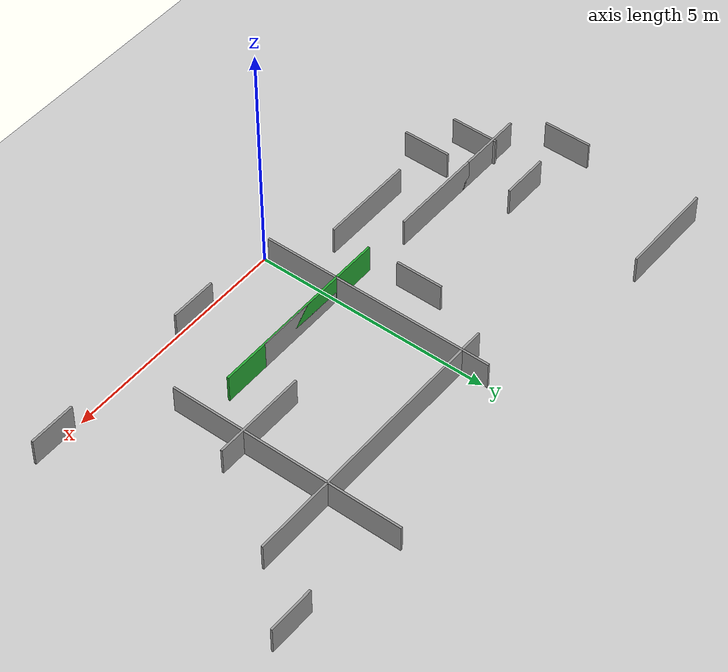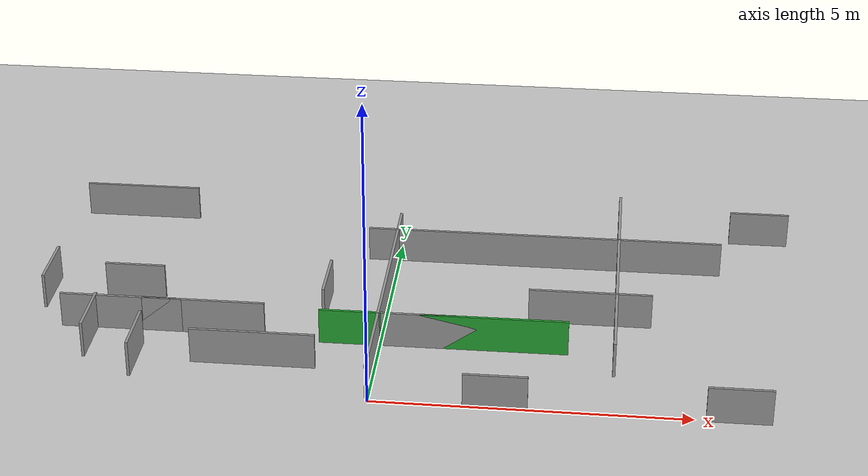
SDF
<sdf version="1.7">
 <world name="default">
  <model name="ground_plane">
   <static>1</static>
   <link name="link">
    <collision name="collision">
     <geometry><plane><normal>0 0 1</normal><size>100 100</size></plane></geometry>
     <surface><friction><ode><mu>100</mu><mu2>50</mu2></ode></friction></surface>
    </collision>
    <visual name="visual">
     <cast_shadows>0</cast_shadows>
     <geometry><plane><normal>0 0 1</normal><size>100 100</size></plane></geometry>
     <material>
      <script><uri>file://media/materials/scripts/gazebo.material</uri><name>Gazebo/Grey</name></script>
     </material>
    </visual>
   </link>
  </model>
  <light name="sun" type="directional">
   <pose>0 0 10 0 -0 0</pose>
   <diffuse>0.8 0.8 0.8 1</diffuse>
   <specular>0.2 0.2 0.2 1</specular>
   <attenuation>
    <range>1000</range>
    <constant>0.9</constant>
    <linear>0.01</linear>
    <quadratic>0.001</quadratic>
   </attenuation>
   <direction>-0.5 0.1 -0.9</direction>
   <spot><inner_angle>0</inner_angle><outer_angle>0</outer_angle><falloff>0</falloff></spot>
  </light>
  <scene><shadows>0</shadows><ambient>0.4 0.4 0.4 1</ambient><background>0.7 0.7 0.7 1</background></scene>
  <physics type="ode">
   <real_time_update_rate>1000</real_time_update_rate>
   <max_step_size>0.001</max_step_size>
   <real_time_factor>1</real_time_factor>
   <ode>
    <solver>
     <type>quick</type>
     <iters>150</iters>
     <precon_iters>0</precon_iters>
     <sor>1.4</sor>
     <use_dynamic_moi_rescaling>1</use_dynamic_moi_rescaling>
    </solver>
    <constraints>
     <cfm>1e-05</cfm>
     <erp>0.2</erp>
     <contact_max_correcting_vel>2000</contact_max_correcting_vel>
     <contact_surface_layer>0.01</contact_surface_layer>
    </constraints>
   </ode>
  </physics>
  <gravity>0 0 -9.8</gravity>
  <magnetic_field>6e-06 2.3e-05 -4.2e-05</magnetic_field>
  <atmosphere type="adiabatic"/>
  <spherical_coordinates>
   <surface_model>EARTH_WGS84</surface_model>
   <latitude_deg>0</latitude_deg>
   <longitude_deg>0</longitude_deg>
   <elevation>0</elevation>
   <heading_deg>0</heading_deg>
  </spherical_coordinates>
  <model name="maze_built">
   <pose>0.462633 2.81339 0 0 -0 0</pose>
   <link name="Wall_Stage_1">
    <collision name="Wall_Stage_1_Collision">
     <geometry><box><size>4 0.045 0.6</size></box></geometry>
     <pose>0 0 0.300 0 -0 0</pose>
    </collision>
    <visual name="Wall_Stage_1_Visual">
     <pose>0 0 0.300 0 -0 0</pose>
     <geometry><box><size>4 0.045 0.6</size></box></geometry>
     <material>
      <script><uri>file://media/materials/scripts/gazebo.material</uri><name>Gazebo/Green</name></script>
      <ambient>1 1 1 1</ambient>
     </material>
     <meta><layer>0</layer></meta>
    </visual>
    <pose>0.550122 -1.12784 0 0 -0 -3.13873</pose>
   </link>
   <link name="Wall_0">
    <collision name="Wall_0_Collision">
     <geometry><box><size>2 0.045 0.6</size></box></geometry>
     <pose>0 0 0.300 0 -0 0</pose>
    </collision>
    <visual name="Wall_0_Visual">
     <pose>0 0 0.300 0 -0 0</pose>
     <geometry><box><size>2 0.045 0.6</size></box></geometry>
     <material>
      <script><uri>file://media/materials/scripts/gazebo.material</uri><name>Gazebo/Grey</name></script>
      <ambient>1 1 1 1</ambient>
     </material>
     <meta><layer>0</layer></meta>
    </visual>
    <pose>0.550122 -1.12784 0 0 -0 -3.13873</pose>
   </link>
   <link name="Wall_1">
    <collision name="Wall_1_Collision">
     <geometry><box><size>5 0.045 0.6</size></box></geometry>
     <pose>0 0 0.300 0 -0 0</pose>
    </collision>
    <visual name="Wall_1_Visual">
     <pose>0 0 0.300 0 -0 0</pose>
     <geometry><box><size>5 0.045 0.6</size></box></geometry>
     <material>
      <script><uri>file://media/materials/scripts/gazebo.material</uri><name>Gazebo/Grey</name></script>
      <ambient>1 1 1 1</ambient>
     </material>
     <meta><layer>0</layer></meta>
    </visual>
    <pose>-0.493757 -0.215773 0 0 -0 1.5708</pose>
   </link>
   <link name="Wall_2">
    <collision name="Wall_2_Collision">
     <geometry><box><size>6 0.045 0.6</size></box></geometry>
     <pose>0 0 0.300 0 -0 0</pose>
    </collision>
    <visual name="Wall_2_Visual">
     <pose>0 0 0.300 0 -0 0</pose>
     <geometry><box><size>6 0.045 0.6</size></box></geometry>
     <material>
      <script><uri>file://media/materials/scripts/gazebo.material</uri><name>Gazebo/Grey</name></script>
      <ambient>1 1 1 1</ambient>
     </material>
     <meta><layer>0</layer></meta>
    </visual>
    <pose>2.01246 1.69872 0 0 -0 0</pose>
   </link>
   <link name="Wall_3">
    <collision name="Wall_3_Collision">
     <geometry><box><size>5 0.045 0.6</size></box></geometry>
     <pose>0 0 0.300 0 -0 0</pose>
    </collision>
    <visual name="Wall_3_Visual">
     <pose>0 0 0.300 0 -0 0</pose>
     <geometry><box><size>5 0.045 0.6</size></box></geometry>
     <material>
      <script><uri>file://media/materials/scripts/gazebo.material</uri><name>Gazebo/Grey</name></script>
      <ambient>1 1 1 1</ambient>
     </material>
     <meta><layer>0</layer></meta>
    </visual>
    <pose>3.28746 0.773721 0 0 -0 -1.5708</pose>
   </link>
   <link name="Wall_4">
    <collision name="Wall_4_Collision">
     <geometry><box><size>2 0.045 0.6</size></box></geometry>
     <pose>0 0 0.300 0 -0 0</pose>
    </collision>
    <visual name="Wall_4_Visual">
     <pose>0 0 0.300 0 -0 0</pose>
     <geometry><box><size>2 0.045 0.6</size></box></geometry>
     <material>
      <script><uri>file://media/materials/scripts/gazebo.material</uri><name>Gazebo/Grey</name></script>
      <ambient>1 1 1 1</ambient>
     </material>
     <meta><layer>0</layer></meta>
    </visual>
    <pose>2.86246 -0.151279 0 0 -0 3.14159</pose>
   </link>
   <link name="Wall_10">
    <collision name="Wall_10_Collision">
     <geometry><box><size>1 0.045 0.6</size></box></geometry>
     <pose>0 0 0.300 0 -0 0</pose>
    </collision>
    <visual name="Wall_10_Visual">
     <pose>0 0 0.300 0 -0 0</pose>
     <geometry><box><size>1 0.045 0.6</size></box></geometry>
     <material>
      <script><uri>file://media/materials/scripts/gazebo.material</uri><name>Gazebo/Grey</name></script>
      <ambient>1 1 1 1</ambient>
     </material>
     <meta><layer>0</layer></meta>
    </visual>
    <pose>-4.275 -1.9544 0 0 -0 1.5708</pose>
   </link>
   <link name="Wall_12">
    <collision name="Wall_12_Collision">
     <geometry><box><size>2 0.045 0.6</size></box></geometry>
     <pose>0 0 0.300 0 -0 0</pose>
    </collision>
    <visual name="Wall_12_Visual">
     <pose>0 0 0.300 0 -0 0</pose>
     <geometry><box><size>2 0.045 0.6</size></box></geometry>
     <material>
      <script><uri>file://media/materials/scripts/gazebo.material</uri><name>Gazebo/Grey</name></script>
      <ambient>1 1 1 1</ambient>
     </material>
     <meta><layer>0</layer></meta>
    </visual>
    <pose>-4.7 -1.0294 0 0 -0 3.14159</pose>
   </link>
   <link name="Wall_13">
    <collision name="Wall_13_Collision">
     <geometry><box><size>2 0.045 0.6</size></box></geometry>
     <pose>0 0 0.300 0 -0 0</pose>
    </collision>
    <visual name="Wall_13_Visual">
     <pose>0 0 0.300 0 -0 0</pose>
     <geometry><box><size>2 0.045 0.6</size></box></geometry>
     <material>
      <script><uri>file://media/materials/scripts/gazebo.material</uri><name>Gazebo/Grey</name></script>
      <ambient>1 1 1 1</ambient>
     </material>
     <meta><layer>0</layer></meta>
    </visual>
    <pose>-3.35 -1.0294 0 0 -0 0</pose>
   </link>
   <link name="Wall_11">
    <collision name="Wall_11_Collision">
     <geometry><box><size>1 0.045 0.6</size></box></geometry>
     <pose>0 0 0.300 0 -0 0</pose>
    </collision>
    <visual name="Wall_11_Visual">
     <pose>0 0 0.300 0 -0 0</pose>
     <geometry><box><size>1 0.045 0.6</size></box></geometry>
     <material>
      <script><uri>file://media/materials/scripts/gazebo.material</uri><name>Gazebo/Grey</name></script>
      <ambient>1 1 1 1</ambient>
     </material>
     <meta><layer>0</layer></meta>
    </visual>
    <pose>-6.125 -0.000145 0 0 -0 1.5708</pose>
   </link>
   <link name="Wall_14">
    <collision name="Wall_14_Collision">
     <geometry><box><size>1 0.045 0.6</size></box></geometry>
     <pose>0 0 0.300 0 -0 0</pose>
    </collision>
    <visual name="Wall_14_Visual">
     <pose>0 0 0.300 0 -0 0</pose>
     <geometry><box><size>1 0.045 0.6</size></box></geometry>
     <material>
      <script><uri>file://media/materials/scripts/gazebo.material</uri><name>Gazebo/Grey</name></script>
      <ambient>1 1 1 1</ambient>
     </material>
     <meta><layer>0</layer></meta>
    </visual>
    <pose>-5.125 -1.4544 0 0 -0 -1.5708</pose>
   </link>
   <link name="Wall_15">
    <collision name="Wall_15_Collision">
     <geometry><box><size>2 0.045 0.6</size></box></geometry>
     <pose>0 0 0.300 0 -0 0</pose>
    </collision>
    <visual name="Wall_15_Visual">
     <pose>0 0 0.300 0 -0 0</pose>
     <geometry><box><size>2 0.045 0.6</size></box></geometry>
     <material>
      <script><uri>file://media/materials/scripts/gazebo.material</uri><name>Gazebo/Grey</name></script>
      <ambient>1 1 1 1</ambient>
     </material>
     <meta><layer>0</layer></meta>
    </visual>
    <pose>-2.39752 -1.92236 0 0 -0 0</pose>
   </link>
   <link name="Wall_16">
    <collision name="Wall_16_Collision">
     <geometry><box><size>1 0.045 0.6</size></box></geometry>
     <pose>0 0 0.300 0 -0 0</pose>
    </collision>
    <visual name="Wall_16_Visual">
     <pose>0 0 0.300 0 -0 0</pose>
     <geometry><box><size>1 0.045 0.6</size></box></geometry>
     <material>
      <script><uri>file://media/materials/scripts/gazebo.material</uri><name>Gazebo/Grey</name></script>
      <ambient>1 1 1 1</ambient>
     </material>
     <meta><layer>0</layer></meta>
    </visual>
    <pose>-1.47253 0.002642 0 0 -0 1.5708</pose>
   </link>
   <link name="Wall_17">
    <collision name="Wall_17_Collision">
     <geometry><box><size>1 0.045 0.6</size></box></geometry>
     <pose>0 0 0.300 0 -0 0</pose>
    </collision>
    <visual name="Wall_17_Visual">
     <pose>0 0 0.300 0 -0 0</pose>
     <geometry><box><size>1 0.045 0.6</size></box></geometry>
     <material>
      <script><uri>file://media/materials/scripts/gazebo.material</uri><name>Gazebo/Grey</name></script>
      <ambient>1 1 1 1</ambient>
     </material>
     <meta><layer>0</layer></meta>
    </visual>
    <pose>-1.47253 0.002642 0 0 -0 1.5708</pose>
   </link>
   <link name="Wall_18">
    <collision name="Wall_18_Collision">
     <geometry><box><size>1 0.045 0.6</size></box></geometry>
     <pose>0 0 0.300 0 -0 0</pose>
    </collision>
    <visual name="Wall_18_Visual">
     <pose>0 0 0.300 0 -0 0</pose>
     <geometry><box><size>1 0.045 0.6</size></box></geometry>
     <material>
      <script><uri>file://media/materials/scripts/gazebo.material</uri><name>Gazebo/Grey</name></script>
      <ambient>1 1 1 1</ambient>
     </material>
     <meta><layer>0</layer></meta>
    </visual>
    <pose>-1.47253 0.002642 0 0 -0 1.5708</pose>
   </link>
   <link name="Wall_5">
    <collision name="Wall_5_Collision">
     <geometry><box><size>2 0.045 0.6</size></box></geometry>
     <pose>0 0 0.300 0 -0 0</pose>
    </collision>
    <visual name="Wall_5_Visual">
     <pose>0 0 0.300 0 -0 0</pose>
     <geometry><box><size>2 0.045 0.6</size></box></geometry>
     <material>
      <script><uri>file://media/materials/scripts/gazebo.material</uri><name>Gazebo/Grey</name></script>
      <ambient>1 1 1 1</ambient>
     </material>
     <meta><layer>0</layer></meta>
    </visual>
    <pose>-5.2 2.87911 0 0 -0 0</pose>
   </link>
   <link name="Wall_6">
    <collision name="Wall_6_Collision">
     <geometry><box><size>1 0.045 0.6</size></box></geometry>
     <pose>0 0 0.300 0 -0 0</pose>
    </collision>
    <visual name="Wall_6_Visual">
     <pose>0 0 0.300 0 -0 0</pose>
     <geometry><box><size>1 0.045 0.6</size></box></geometry>
     <material>
      <script><uri>file://media/materials/scripts/gazebo.material</uri><name>Gazebo/Grey</name></script>
      <ambient>1 1 1 1</ambient>
     </material>
     <meta><layer>0</layer></meta>
    </visual>
    <pose>-4.7 0.029114 0 0 -0 3.14159</pose>
   </link>
   <link name="Wall_7">
    <collision name="Wall_7_Collision">
     <geometry><box><size>1 0.045 0.6</size></box></geometry>
     <pose>0 0 0.300 0 -0 0</pose>
    </collision>
    <visual name="Wall_7_Visual">
     <pose>0 0 0.300 0 -0 0</pose>
     <geometry><box><size>1 0.045 0.6</size></box></geometry>
     <material>
      <script><uri>file://media/materials/scripts/gazebo.material</uri><name>Gazebo/Grey</name></script>
      <ambient>1 1 1 1</ambient>
     </material>
     <meta><layer>0</layer></meta>
    </visual>
    <pose>5.7 2.87911 0 0 -0 0</pose>
   </link>
   <link name="Wall_8">
    <collision name="Wall_8_Collision">
     <geometry><box><size>1 0.045 0.6</size></box></geometry>
     <pose>0 0 0.300 0 -0 0</pose>
    </collision>
    <visual name="Wall_8_Visual">
     <pose>0 0 0.300 0 -0 0</pose>
     <geometry><box><size>1 0.045 0.6</size></box></geometry>
     <material>
      <script><uri>file://media/materials/scripts/gazebo.material</uri><name>Gazebo/Grey</name></script>
      <ambient>1 1 1 1</ambient>
     </material>
     <meta><layer>0</layer></meta>
    </visual>
    <pose>5.2 -2.82089 0 0 -0 3.14159</pose>
   </link>
   <link name="Wall_9">
    <collision name="Wall_9_Collision">
     <geometry><box><size>1 0.045 0.6</size></box></geometry>
     <pose>0 0 0.300 0 -0 0</pose>
    </collision>
    <visual name="Wall_9_Visual">
     <pose>0 0 0.300 0 -0 0</pose>
     <geometry><box><size>1 0.045 0.6</size></box></geometry>
     <material>
      <script><uri>file://media/materials/scripts/gazebo.material</uri><name>Gazebo/Grey</name></script>
      <ambient>1 1 1 1</ambient>
     </material>
     <meta><layer>0</layer></meta>
    </visual>
    <pose>1.5 -2.82089 0 0 -0 3.14159</pose>
   </link>
   <static>1</static>
  </model>
  <model name="actor1_model">
   <pose>0.086227 0.925528 1.2138 1.5707 -0 2.32525</pose>
   <scale>1 1 1</scale>
   <link name="Head">
    <pose>0.098805 0.975295 1.67819 1.81231 -0.025997 2.3557</pose>
    <velocity>0 0 0 0 -0 0</velocity>
    <acceleration>0 0 0 0 -0 0</acceleration>
    <wrench>0 0 0 0 -0 0</wrench>
   </link>
   <link name="Hips">
    <pose>0.086227 0.925528 1.2138 1.5707 -0 2.32525</pose>
    <velocity>0 0 0 0 -0 0</velocity>
    <acceleration>0 0 0 0 -0 0</acceleration>
    <wrench>0 0 0 0 -0 0</wrench>
   </link>
   <link name="LHipJoint">
    <pose>0.086227 0.925528 1.2138 -1.96439 0.688543 -1.83155</pose>
    <velocity>0 0 0 0 -0 0</velocity>
    <acceleration>0 0 0 0 -0 0</acceleration>
    <wrench>0 0 0 0 -0 0</wrench>
   </link>
   <link name="LThumb">
    <pose>-0.094792 1.0532 0.996851 -1.58102 -0.130374 -1.88531</pose>
    <velocity>0 0 0 0 -0 0</velocity>
    <acceleration>0 0 0 0 -0 0</acceleration>
    <wrench>0 0 0 0 -0 0</wrench>
   </link>
   <link name="LeftArm">
    <pose>-0.056159 1.07678 1.53517 -1.80812 -0.081261 -0.93891</pose>
    <velocity>0 0 0 0 -0 0</velocity>
    <acceleration>0 0 0 0 -0 0</acceleration>
    <wrench>0 0 0 0 -0 0</wrench>
   </link>
   <link name="LeftFingerBase">
    <pose>-0.094792 1.0532 0.996851 -1.96196 0.353476 -1.20456</pose>
    <velocity>0 0 0 0 -0 0</velocity>
    <acceleration>0 0 0 0 -0 0</acceleration>
    <wrench>0 0 0 0 -0 0</wrench>
   </link>
   <link name="LeftFoot">
    <pose>0.154647 1.00061 0.250267 -2.81708 0.095676 2.25062</pose>
    <velocity>0 0 0 0 -0 0</velocity>
    <acceleration>0 0 0 0 -0 0</acceleration>
    <wrench>0 0 0 0 -0 0</wrench>
   </link>
   <link name="LeftForeArm">
    <pose>-0.10188 1.01207 1.22566 -1.44284 0.12754 -0.950322</pose>
    <velocity>0 0 0 0 -0 0</velocity>
    <acceleration>0 0 0 0 -0 0</acceleration>
    <wrench>0 0 0 0 -0 0</wrench>
   </link>
   <link name="LeftHand">
    <pose>-0.094792 1.0532 0.996851 -1.46608 0.147187 -1.11963</pose>
    <velocity>0 0 0 0 -0 0</velocity>
    <acceleration>0 0 0 0 -0 0</acceleration>
    <wrench>0 0 0 0 -0 0</wrench>
   </link>
   <link name="LeftHandIndex1">
    <pose>-0.110231 1.05852 0.968396 -1.94774 0.238156 -1.15588</pose>
    <velocity>0 0 0 0 -0 0</velocity>
    <acceleration>0 0 0 0 -0 0</acceleration>
    <wrench>0 0 0 0 -0 0</wrench>
   </link>
   <link name="LeftLeg">
    <pose>0.171759 1.08246 0.688329 -1.72681 -0.106423 -0.800077</pose>
    <velocity>0 0 0 0 -0 0</velocity>
    <acceleration>0 0 0 0 -0 0</acceleration>
    <wrench>0 0 0 0 -0 0</wrench>
   </link>
   <link name="LeftShoulder">
    <pose>0.119556 0.970922 1.47382 1.19368 1.25751 2.20487</pose>
    <velocity>0 0 0 0 -0 0</velocity>
    <acceleration>0 0 0 0 -0 0</acceleration>
    <wrench>0 0 0 0 -0 0</wrench>
   </link>
   <link name="LeftToeBase">
    <pose>0.258311 1.07905 0.20676 -3.02206 0.100308 2.25597</pose>
    <velocity>0 0 0 0 -0 0</velocity>
    <acceleration>0 0 0 0 -0 0</acceleration>
    <wrench>0 0 0 0 -0 0</wrench>
   </link>
   <link name="LeftUpLeg">
    <pose>0.052558 1.02778 1.10429 -1.28348 -0.105053 -0.79967</pose>
    <velocity>0 0 0 0 -0 0</velocity>
    <acceleration>0 0 0 0 -0 0</acceleration>
    <wrench>0 0 0 0 -0 0</wrench>
   </link>
   <link name="LowerBack">
    <pose>0.086227 0.925528 1.2138 1.87655 0.028231 2.36657</pose>
    <velocity>0 0 0 0 -0 0</velocity>
    <acceleration>0 0 0 0 -0 0</acceleration>
    <wrench>0 0 0 0 -0 0</wrench>
   </link>
   <link name="Neck">
    <pose>0.119556 0.970922 1.47382 1.48724 0.139601 2.39487</pose>
    <velocity>0 0 0 0 -0 0</velocity>
    <acceleration>0 0 0 0 -0 0</acceleration>
    <wrench>0 0 0 0 -0 0</wrench>
   </link>
   <link name="Neck1">
    <pose>0.101467 0.974682 1.58648 1.5559 0.025786 2.39118</pose>
    <velocity>0 0 0 0 -0 0</velocity>
    <acceleration>0 0 0 0 -0 0</acceleration>
    <wrench>0 0 0 0 -0 0</wrench>
   </link>
   <link name="RHipJoint">
    <pose>0.086227 0.925528 1.2138 -1.9644 -0.662892 0.234085</pose>
    <velocity>0 0 0 0 -0 0</velocity>
    <acceleration>0 0 0 0 -0 0</acceleration>
    <wrench>0 0 0 0 -0 0</wrench>
   </link>
   <link name="RThumb">
    <pose>0.340784 0.863316 1.00499 -0.986961 -0.704718 0.30603</pose>
    <velocity>0 0 0 0 -0 0</velocity>
    <acceleration>0 0 0 0 -0 0</acceleration>
    <wrench>0 0 0 0 -0 0</wrench>
   </link>
   <link name="RightArm">
    <pose>0.24991 0.826657 1.534 -1.6353 0.011827 -0.545836</pose>
    <velocity>0 0 0 0 -0 0</velocity>
    <acceleration>0 0 0 0 -0 0</acceleration>
    <wrench>0 0 0 0 -0 0</wrench>
   </link>
   <link name="RightFingerBase">
    <pose>0.340784 0.863316 1.00499 -0.867709 -0.481595 -0.671934</pose>
    <velocity>0 0 0 0 -0 0</velocity>
    <acceleration>0 0 0 0 -0 0</acceleration>
    <wrench>0 0 0 0 -0 0</wrench>
   </link>
   <link name="RightFoot">
    <pose>-0.038601 0.646584 0.442744 -1.60135 0.064242 2.34479</pose>
    <velocity>0 0 0 0 -0 0</velocity>
    <acceleration>0 0 0 0 -0 0</acceleration>
    <wrench>0 0 0 0 -0 0</wrench>
   </link>
   <link name="RightForeArm">
    <pose>0.23561 0.81058 1.20634 -1.11291 -0.274485 -0.603173</pose>
    <velocity>0 0 0 0 -0 0</velocity>
    <acceleration>0 0 0 0 -0 0</acceleration>
    <wrench>0 0 0 0 -0 0</wrench>
   </link>
   <link name="RightHand">
    <pose>0.340784 0.863316 1.00499 -1.13568 -0.31068 -0.524259</pose>
    <velocity>0 0 0 0 -0 0</velocity>
    <acceleration>0 0 0 0 -0 0</acceleration>
    <wrench>0 0 0 0 -0 0</wrench>
   </link>
   <link name="RightHandIndex1">
    <pose>0.372246 0.87657 0.973663 -0.904159 -0.385216 -0.585286</pose>
    <velocity>0 0 0 0 -0 0</velocity>
    <acceleration>0 0 0 0 -0 0</acceleration>
    <wrench>0 0 0 0 -0 0</wrench>
   </link>
   <link name="RightLeg">
    <pose>0.229724 0.914846 0.665841 -2.60977 -0.030811 -0.803637</pose>
    <velocity>0 0 0 0 -0 0</velocity>
    <acceleration>0 0 0 0 -0 0</acceleration>
    <wrench>0 0 0 0 -0 0</wrench>
   </link>
   <link name="RightShoulder">
    <pose>0.119556 0.970922 1.47382 1.43808 -1.26792 2.44455</pose>
    <velocity>0 0 0 0 -0 0</velocity>
    <acceleration>0 0 0 0 -0 0</acceleration>
    <wrench>0 0 0 0 -0 0</wrench>
   </link>
   <link name="RightToeBase">
    <pose>-0.028911 0.643019 0.297833 -1.72973 0.066251 2.33766</pose>
    <velocity>0 0 0 0 -0 0</velocity>
    <acceleration>0 0 0 0 -0 0</acceleration>
    <wrench>0 0 0 0 -0 0</wrench>
   </link>
   <link name="RightUpLeg">
    <pose>0.182774 0.889239 1.10429 -1.45376 -0.032249 -0.803805</pose>
    <velocity>0 0 0 0 -0 0</velocity>
    <acceleration>0 0 0 0 -0 0</acceleration>
    <wrench>0 0 0 0 -0 0</wrench>
   </link>
   <link name="Spine">
    <pose>0.111929 0.956934 1.34181 1.68753 0.028289 2.40569</pose>
    <velocity>0 0 0 0 -0 0</velocity>
    <acceleration>0 0 0 0 -0 0</acceleration>
    <wrench>0 0 0 0 -0 0</wrench>
   </link>
   <link name="Spine1">
    <pose>0.119556 0.970922 1.47382 1.64772 -0.039624 2.41566</pose>
    <velocity>0 0 0 0 -0 0</velocity>
    <acceleration>0 0 0 0 -0 0</acceleration>
    <wrench>0 0 0 0 -0 0</wrench>
   </link>
   <link name="actor1_pose">
    <pose>0.086227 0.925528 1.2138 1.5707 -0 2.32525</pose>
    <velocity>0 0 0 0 -0 0</velocity>
    <acceleration>0 0 0 0 -0 0</acceleration>
    <wrench>0 0 0 0 -0 0</wrench>
   </link>
  </model>
 </world>
</sdf>
